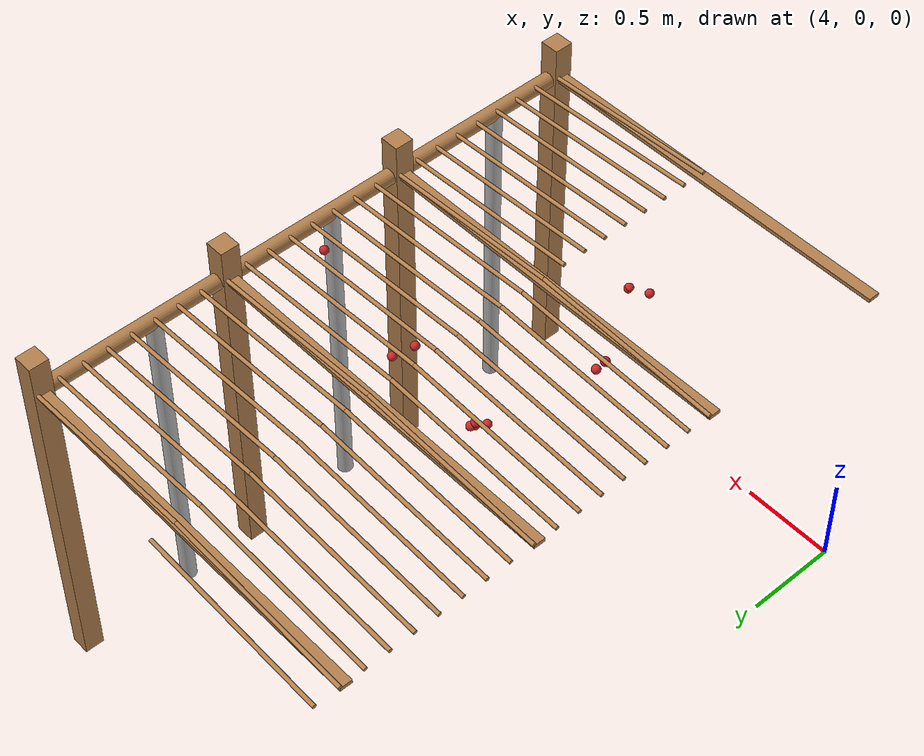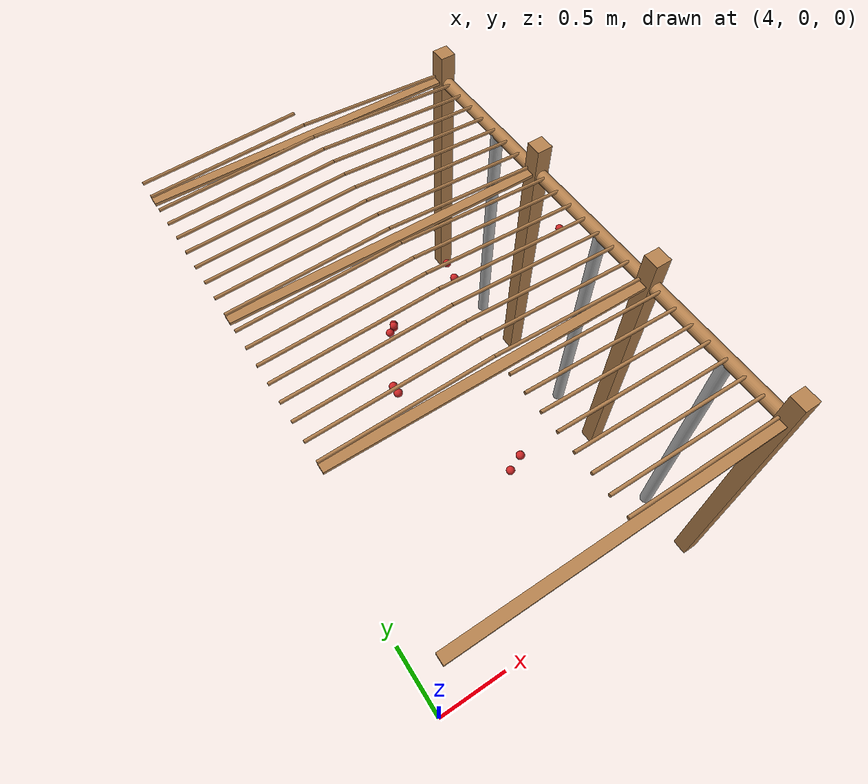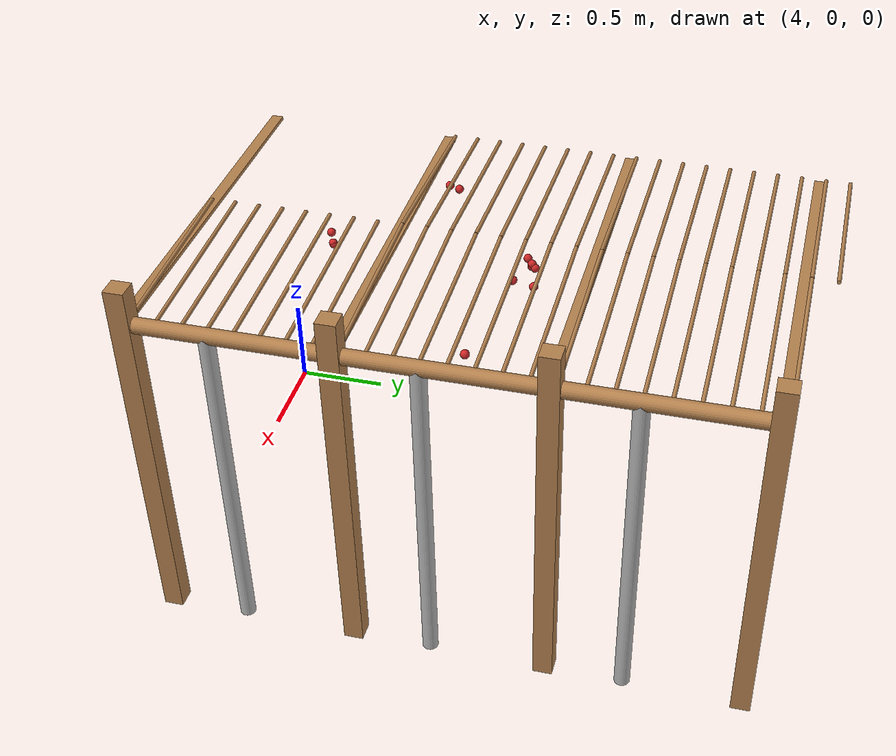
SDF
<sdf version="1.4">
 <model name="pergola">
  <include><name>post_21</name><pose>6.0 0.0 0 0 0 0</pose><uri>model://post</uri></include>
  <include><name>post_22</name><pose>6.0 1.0 0 0 0 0</pose><uri>model://post</uri></include>
  <include><name>post_23</name><pose>6.0 2.0 0 0 0 0</pose><uri>model://post</uri></include>
  <include><name>post_24</name><pose>6.0 3.0 0 0 0 0</pose><uri>model://post</uri></include>
  <link name="beam_14">
   <pose>5.0 0.0 1.81 0 0 0</pose>
   <collision name="collision"><geometry><box><size>2.0 0.06 0.02</size></box></geometry></collision>
   <visual name="visual">
    <geometry><box><size>2.0 0.06 0.02</size></box></geometry>
    <material><script><name>Gazebo/Wood</name></script></material>
   </visual>
   <inertial>
    <mass>5</mass>
    <inertia>
     <ixx>0.0016666666666666668</ixx>
     <ixy>0.0</ixy>
     <ixz>0.0</ixz>
     <iyy>1.6681666666666664</iyy>
     <iyz>0.0</iyz>
     <izz>1.6668333333333332</izz>
    </inertia>
   </inertial>
  </link>
  <link name="beam_15">
   <pose>5.0 1.0 1.81 0 0 0</pose>
   <collision name="collision"><geometry><box><size>2.0 0.06 0.02</size></box></geometry></collision>
   <visual name="visual">
    <geometry><box><size>2.0 0.06 0.02</size></box></geometry>
    <material><script><name>Gazebo/Wood</name></script></material>
   </visual>
   <inertial>
    <mass>5</mass>
    <inertia>
     <ixx>0.0016666666666666668</ixx>
     <ixy>0.0</ixy>
     <ixz>0.0</ixz>
     <iyy>1.6681666666666664</iyy>
     <iyz>0.0</iyz>
     <izz>1.6668333333333332</izz>
    </inertia>
   </inertial>
  </link>
  <link name="beam_16">
   <pose>5.0 2.0 1.81 0 0 0</pose>
   <collision name="collision"><geometry><box><size>2.0 0.06 0.02</size></box></geometry></collision>
   <visual name="visual">
    <geometry><box><size>2.0 0.06 0.02</size></box></geometry>
    <material><script><name>Gazebo/Wood</name></script></material>
   </visual>
   <inertial>
    <mass>5</mass>
    <inertia>
     <ixx>0.0016666666666666668</ixx>
     <ixy>0.0</ixy>
     <ixz>0.0</ixz>
     <iyy>1.6681666666666664</iyy>
     <iyz>0.0</iyz>
     <izz>1.6668333333333332</izz>
    </inertia>
   </inertial>
  </link>
  <link name="beam_17">
   <pose>5.0 3.0 1.81 0 0 0</pose>
   <collision name="collision"><geometry><box><size>2.0 0.06 0.02</size></box></geometry></collision>
   <visual name="visual">
    <geometry><box><size>2.0 0.06 0.02</size></box></geometry>
    <material><script><name>Gazebo/Wood</name></script></material>
   </visual>
   <inertial>
    <mass>5</mass>
    <inertia>
     <ixx>0.0016666666666666668</ixx>
     <ixy>0.0</ixy>
     <ixz>0.0</ixz>
     <iyy>1.6681666666666664</iyy>
     <iyz>0.0</iyz>
     <izz>1.6668333333333332</izz>
    </inertia>
   </inertial>
  </link>
  <include><name>tree_18</name><pose>6.0 0.4 0 0 0 0</pose><uri>model://tree_trunk</uri></include>
  <include><name>tree_19</name><pose>6.0 1.4 0 0 0 0</pose><uri>model://tree_trunk</uri></include>
  <include><name>tree_20</name><pose>6.0 2.4 0 0 0 0</pose><uri>model://tree_trunk</uri></include>
  <link name="baseBranch_18">
   <pose>6.0 0.5 1.8 1.5707963267948966 0 0</pose>
   <collision name="collision">
    <geometry><cylinder><radius>0.04</radius><length>0.94</length></cylinder></geometry>
   </collision>
   <visual name="visual">
    <geometry><cylinder><radius>0.04</radius><length>0.94</length></cylinder></geometry>
    <material><script><name>Gazebo/WoodFloor</name></script></material>
   </visual>
   <inertial>
    <mass>10</mass>
    <inertia>
     <ixx>0.7403333333333334</ixx>
     <ixy>0.0</ixy>
     <ixz>0.0</ixz>
     <iyy>0.7403333333333334</iyy>
     <iyz>0.0</iyz>
     <izz>0.008</izz>
    </inertia>
   </inertial>
  </link>
  <link name="baseBranch_19">
   <pose>6.0 1.5 1.8 1.5707963267948966 0 0</pose>
   <collision name="collision">
    <geometry><cylinder><radius>0.04</radius><length>0.94</length></cylinder></geometry>
   </collision>
   <visual name="visual">
    <geometry><cylinder><radius>0.04</radius><length>0.94</length></cylinder></geometry>
    <material><script><name>Gazebo/WoodFloor</name></script></material>
   </visual>
   <inertial>
    <mass>10</mass>
    <inertia>
     <ixx>0.7403333333333334</ixx>
     <ixy>0.0</ixy>
     <ixz>0.0</ixz>
     <iyy>0.7403333333333334</iyy>
     <iyz>0.0</iyz>
     <izz>0.008</izz>
    </inertia>
   </inertial>
  </link>
  <link name="baseBranch_20">
   <pose>6.0 2.5 1.8 1.5707963267948966 0 0</pose>
   <collision name="collision">
    <geometry><cylinder><radius>0.04</radius><length>0.94</length></cylinder></geometry>
   </collision>
   <visual name="visual">
    <geometry><cylinder><radius>0.04</radius><length>0.94</length></cylinder></geometry>
    <material><script><name>Gazebo/WoodFloor</name></script></material>
   </visual>
   <inertial>
    <mass>10</mass>
    <inertia>
     <ixx>0.7403333333333334</ixx>
     <ixy>0.0</ixy>
     <ixz>0.0</ixz>
     <iyy>0.7403333333333334</iyy>
     <iyz>0.0</iyz>
     <izz>0.008</izz>
    </inertia>
   </inertial>
  </link>
  <link name="vine_193">
   <pose>5.5 0.03 1.85 0 -1.5208379310729538 0</pose>
   <collision name="collision">
    <geometry><cylinder><radius>0.01</radius><length>1.0012492197250393</length></cylinder></geometry>
   </collision>
   <visual name="visual">
    <geometry><cylinder><radius>0.01</radius><length>1.0012492197250393</length></cylinder></geometry>
    <material><script><name>Gazebo/WoodFloor</name></script></material>
   </visual>
   <inertial>
    <mass>5</mass>
    <inertia>
     <ixx>0.41783333333333345</ixx>
     <ixy>0.0</ixy>
     <ixz>0.0</ixz>
     <iyy>0.41783333333333345</iyy>
     <iyz>0.0</iyz>
     <izz>0.00025</izz>
    </inertia>
   </inertial>
  </link>
  <link name="vine_195">
   <pose>5.5 0.155 1.85 0 -1.5208379310729538 0</pose>
   <collision name="collision">
    <geometry><cylinder><radius>0.01</radius><length>1.0012492197250393</length></cylinder></geometry>
   </collision>
   <visual name="visual">
    <geometry><cylinder><radius>0.01</radius><length>1.0012492197250393</length></cylinder></geometry>
    <material><script><name>Gazebo/WoodFloor</name></script></material>
   </visual>
   <inertial>
    <mass>5</mass>
    <inertia>
     <ixx>0.41783333333333345</ixx>
     <ixy>0.0</ixy>
     <ixz>0.0</ixz>
     <iyy>0.41783333333333345</iyy>
     <iyz>0.0</iyz>
     <izz>0.00025</izz>
    </inertia>
   </inertial>
  </link>
  <link name="vine_197">
   <pose>5.5 0.28 1.85 0 -1.5208379310729538 0</pose>
   <collision name="collision">
    <geometry><cylinder><radius>0.01</radius><length>1.0012492197250393</length></cylinder></geometry>
   </collision>
   <visual name="visual">
    <geometry><cylinder><radius>0.01</radius><length>1.0012492197250393</length></cylinder></geometry>
    <material><script><name>Gazebo/WoodFloor</name></script></material>
   </visual>
   <inertial>
    <mass>5</mass>
    <inertia>
     <ixx>0.41783333333333345</ixx>
     <ixy>0.0</ixy>
     <ixz>0.0</ixz>
     <iyy>0.41783333333333345</iyy>
     <iyz>0.0</iyz>
     <izz>0.00025</izz>
    </inertia>
   </inertial>
  </link>
  <link name="vine_199">
   <pose>5.5 0.405 1.85 0 -1.5208379310729538 0</pose>
   <collision name="collision">
    <geometry><cylinder><radius>0.01</radius><length>1.0012492197250393</length></cylinder></geometry>
   </collision>
   <visual name="visual">
    <geometry><cylinder><radius>0.01</radius><length>1.0012492197250393</length></cylinder></geometry>
    <material><script><name>Gazebo/WoodFloor</name></script></material>
   </visual>
   <inertial>
    <mass>5</mass>
    <inertia>
     <ixx>0.41783333333333345</ixx>
     <ixy>0.0</ixy>
     <ixz>0.0</ixz>
     <iyy>0.41783333333333345</iyy>
     <iyz>0.0</iyz>
     <izz>0.00025</izz>
    </inertia>
   </inertial>
  </link>
  <link name="vine_201">
   <pose>5.5 0.53 1.85 0 -1.5208379310729538 0</pose>
   <collision name="collision">
    <geometry><cylinder><radius>0.01</radius><length>1.0012492197250393</length></cylinder></geometry>
   </collision>
   <visual name="visual">
    <geometry><cylinder><radius>0.01</radius><length>1.0012492197250393</length></cylinder></geometry>
    <material><script><name>Gazebo/WoodFloor</name></script></material>
   </visual>
   <inertial>
    <mass>5</mass>
    <inertia>
     <ixx>0.41783333333333345</ixx>
     <ixy>0.0</ixy>
     <ixz>0.0</ixz>
     <iyy>0.41783333333333345</iyy>
     <iyz>0.0</iyz>
     <izz>0.00025</izz>
    </inertia>
   </inertial>
  </link>
  <link name="vine_203">
   <pose>5.5 0.655 1.85 0 -1.5208379310729538 0</pose>
   <collision name="collision">
    <geometry><cylinder><radius>0.01</radius><length>1.0012492197250393</length></cylinder></geometry>
   </collision>
   <visual name="visual">
    <geometry><cylinder><radius>0.01</radius><length>1.0012492197250393</length></cylinder></geometry>
    <material><script><name>Gazebo/WoodFloor</name></script></material>
   </visual>
   <inertial>
    <mass>5</mass>
    <inertia>
     <ixx>0.41783333333333345</ixx>
     <ixy>0.0</ixy>
     <ixz>0.0</ixz>
     <iyy>0.41783333333333345</iyy>
     <iyz>0.0</iyz>
     <izz>0.00025</izz>
    </inertia>
   </inertial>
  </link>
  <link name="vine_205">
   <pose>5.5 0.78 1.85 0 -1.5208379310729538 0</pose>
   <collision name="collision">
    <geometry><cylinder><radius>0.01</radius><length>1.0012492197250393</length></cylinder></geometry>
   </collision>
   <visual name="visual">
    <geometry><cylinder><radius>0.01</radius><length>1.0012492197250393</length></cylinder></geometry>
    <material><script><name>Gazebo/WoodFloor</name></script></material>
   </visual>
   <inertial>
    <mass>5</mass>
    <inertia>
     <ixx>0.41783333333333345</ixx>
     <ixy>0.0</ixy>
     <ixz>0.0</ixz>
     <iyy>0.41783333333333345</iyy>
     <iyz>0.0</iyz>
     <izz>0.00025</izz>
    </inertia>
   </inertial>
  </link>
  <link name="vine_207">
   <pose>5.5 0.905 1.85 0 -1.5208379310729538 0</pose>
   <collision name="collision">
    <geometry><cylinder><radius>0.01</radius><length>1.0012492197250393</length></cylinder></geometry>
   </collision>
   <visual name="visual">
    <geometry><cylinder><radius>0.01</radius><length>1.0012492197250393</length></cylinder></geometry>
    <material><script><name>Gazebo/WoodFloor</name></script></material>
   </visual>
   <inertial>
    <mass>5</mass>
    <inertia>
     <ixx>0.41783333333333345</ixx>
     <ixy>0.0</ixy>
     <ixz>0.0</ixz>
     <iyy>0.41783333333333345</iyy>
     <iyz>0.0</iyz>
     <izz>0.00025</izz>
    </inertia>
   </inertial>
  </link>
  <link name="vine_208">
   <pose>4.5 1.03 1.85 0 1.5208379310729538 0</pose>
   <collision name="collision">
    <geometry><cylinder><radius>0.01</radius><length>1.0012492197250393</length></cylinder></geometry>
   </collision>
   <visual name="visual">
    <geometry><cylinder><radius>0.01</radius><length>1.0012492197250393</length></cylinder></geometry>
    <material><script><name>Gazebo/WoodFloor</name></script></material>
   </visual>
   <inertial>
    <mass>5</mass>
    <inertia>
     <ixx>0.41783333333333345</ixx>
     <ixy>0.0</ixy>
     <ixz>0.0</ixz>
     <iyy>0.41783333333333345</iyy>
     <iyz>0.0</iyz>
     <izz>0.00025</izz>
    </inertia>
   </inertial>
  </link>
  <link name="vine_209">
   <pose>5.5 1.03 1.85 0 -1.5208379310729538 0</pose>
   <collision name="collision">
    <geometry><cylinder><radius>0.01</radius><length>1.0012492197250393</length></cylinder></geometry>
   </collision>
   <visual name="visual">
    <geometry><cylinder><radius>0.01</radius><length>1.0012492197250393</length></cylinder></geometry>
    <material><script><name>Gazebo/WoodFloor</name></script></material>
   </visual>
   <inertial>
    <mass>5</mass>
    <inertia>
     <ixx>0.41783333333333345</ixx>
     <ixy>0.0</ixy>
     <ixz>0.0</ixz>
     <iyy>0.41783333333333345</iyy>
     <iyz>0.0</iyz>
     <izz>0.00025</izz>
    </inertia>
   </inertial>
  </link>
  <link name="vine_210">
   <pose>4.5 1.155 1.85 0 1.5208379310729538 0</pose>
   <collision name="collision">
    <geometry><cylinder><radius>0.01</radius><length>1.0012492197250393</length></cylinder></geometry>
   </collision>
   <visual name="visual">
    <geometry><cylinder><radius>0.01</radius><length>1.0012492197250393</length></cylinder></geometry>
    <material><script><name>Gazebo/WoodFloor</name></script></material>
   </visual>
   <inertial>
    <mass>5</mass>
    <inertia>
     <ixx>0.41783333333333345</ixx>
     <ixy>0.0</ixy>
     <ixz>0.0</ixz>
     <iyy>0.41783333333333345</iyy>
     <iyz>0.0</iyz>
     <izz>0.00025</izz>
    </inertia>
   </inertial>
  </link>
  <link name="vine_211">
   <pose>5.5 1.155 1.85 0 -1.5208379310729538 0</pose>
   <collision name="collision">
    <geometry><cylinder><radius>0.01</radius><length>1.0012492197250393</length></cylinder></geometry>
   </collision>
   <visual name="visual">
    <geometry><cylinder><radius>0.01</radius><length>1.0012492197250393</length></cylinder></geometry>
    <material><script><name>Gazebo/WoodFloor</name></script></material>
   </visual>
   <inertial>
    <mass>5</mass>
    <inertia>
     <ixx>0.41783333333333345</ixx>
     <ixy>0.0</ixy>
     <ixz>0.0</ixz>
     <iyy>0.41783333333333345</iyy>
     <iyz>0.0</iyz>
     <izz>0.00025</izz>
    </inertia>
   </inertial>
  </link>
  <link name="vine_212">
   <pose>4.5 1.28 1.85 0 1.5208379310729538 0</pose>
   <collision name="collision">
    <geometry><cylinder><radius>0.01</radius><length>1.0012492197250393</length></cylinder></geometry>
   </collision>
   <visual name="visual">
    <geometry><cylinder><radius>0.01</radius><length>1.0012492197250393</length></cylinder></geometry>
    <material><script><name>Gazebo/WoodFloor</name></script></material>
   </visual>
   <inertial>
    <mass>5</mass>
    <inertia>
     <ixx>0.41783333333333345</ixx>
     <ixy>0.0</ixy>
     <ixz>0.0</ixz>
     <iyy>0.41783333333333345</iyy>
     <iyz>0.0</iyz>
     <izz>0.00025</izz>
    </inertia>
   </inertial>
  </link>
  <link name="vine_213">
   <pose>5.5 1.28 1.85 0 -1.5208379310729538 0</pose>
   <collision name="collision">
    <geometry><cylinder><radius>0.01</radius><length>1.0012492197250393</length></cylinder></geometry>
   </collision>
   <visual name="visual">
    <geometry><cylinder><radius>0.01</radius><length>1.0012492197250393</length></cylinder></geometry>
    <material><script><name>Gazebo/WoodFloor</name></script></material>
   </visual>
   <inertial>
    <mass>5</mass>
    <inertia>
     <ixx>0.41783333333333345</ixx>
     <ixy>0.0</ixy>
     <ixz>0.0</ixz>
     <iyy>0.41783333333333345</iyy>
     <iyz>0.0</iyz>
     <izz>0.00025</izz>
    </inertia>
   </inertial>
  </link>
  <link name="vine_214">
   <pose>4.5 1.405 1.85 0 1.5208379310729538 0</pose>
   <collision name="collision">
    <geometry><cylinder><radius>0.01</radius><length>1.0012492197250393</length></cylinder></geometry>
   </collision>
   <visual name="visual">
    <geometry><cylinder><radius>0.01</radius><length>1.0012492197250393</length></cylinder></geometry>
    <material><script><name>Gazebo/WoodFloor</name></script></material>
   </visual>
   <inertial>
    <mass>5</mass>
    <inertia>
     <ixx>0.41783333333333345</ixx>
     <ixy>0.0</ixy>
     <ixz>0.0</ixz>
     <iyy>0.41783333333333345</iyy>
     <iyz>0.0</iyz>
     <izz>0.00025</izz>
    </inertia>
   </inertial>
  </link>
  <link name="vine_215">
   <pose>5.5 1.405 1.85 0 -1.5208379310729538 0</pose>
   <collision name="collision">
    <geometry><cylinder><radius>0.01</radius><length>1.0012492197250393</length></cylinder></geometry>
   </collision>
   <visual name="visual">
    <geometry><cylinder><radius>0.01</radius><length>1.0012492197250393</length></cylinder></geometry>
    <material><script><name>Gazebo/WoodFloor</name></script></material>
   </visual>
   <inertial>
    <mass>5</mass>
    <inertia>
     <ixx>0.41783333333333345</ixx>
     <ixy>0.0</ixy>
     <ixz>0.0</ixz>
     <iyy>0.41783333333333345</iyy>
     <iyz>0.0</iyz>
     <izz>0.00025</izz>
    </inertia>
   </inertial>
  </link>
  <link name="vine_216">
   <pose>4.5 1.53 1.85 0 1.5208379310729538 0</pose>
   <collision name="collision">
    <geometry><cylinder><radius>0.01</radius><length>1.0012492197250393</length></cylinder></geometry>
   </collision>
   <visual name="visual">
    <geometry><cylinder><radius>0.01</radius><length>1.0012492197250393</length></cylinder></geometry>
    <material><script><name>Gazebo/WoodFloor</name></script></material>
   </visual>
   <inertial>
    <mass>5</mass>
    <inertia>
     <ixx>0.41783333333333345</ixx>
     <ixy>0.0</ixy>
     <ixz>0.0</ixz>
     <iyy>0.41783333333333345</iyy>
     <iyz>0.0</iyz>
     <izz>0.00025</izz>
    </inertia>
   </inertial>
  </link>
  <link name="vine_217">
   <pose>5.5 1.53 1.85 0 -1.5208379310729538 0</pose>
   <collision name="collision">
    <geometry><cylinder><radius>0.01</radius><length>1.0012492197250393</length></cylinder></geometry>
   </collision>
   <visual name="visual">
    <geometry><cylinder><radius>0.01</radius><length>1.0012492197250393</length></cylinder></geometry>
    <material><script><name>Gazebo/WoodFloor</name></script></material>
   </visual>
   <inertial>
    <mass>5</mass>
    <inertia>
     <ixx>0.41783333333333345</ixx>
     <ixy>0.0</ixy>
     <ixz>0.0</ixz>
     <iyy>0.41783333333333345</iyy>
     <iyz>0.0</iyz>
     <izz>0.00025</izz>
    </inertia>
   </inertial>
  </link>
  <link name="vine_218">
   <pose>4.5 1.655 1.85 0 1.5208379310729538 0</pose>
   <collision name="collision">
    <geometry><cylinder><radius>0.01</radius><length>1.0012492197250393</length></cylinder></geometry>
   </collision>
   <visual name="visual">
    <geometry><cylinder><radius>0.01</radius><length>1.0012492197250393</length></cylinder></geometry>
    <material><script><name>Gazebo/WoodFloor</name></script></material>
   </visual>
   <inertial>
    <mass>5</mass>
    <inertia>
     <ixx>0.41783333333333345</ixx>
     <ixy>0.0</ixy>
     <ixz>0.0</ixz>
     <iyy>0.41783333333333345</iyy>
     <iyz>0.0</iyz>
     <izz>0.00025</izz>
    </inertia>
   </inertial>
  </link>
  <link name="vine_219">
   <pose>5.5 1.655 1.85 0 -1.5208379310729538 0</pose>
   <collision name="collision">
    <geometry><cylinder><radius>0.01</radius><length>1.0012492197250393</length></cylinder></geometry>
   </collision>
   <visual name="visual">
    <geometry><cylinder><radius>0.01</radius><length>1.0012492197250393</length></cylinder></geometry>
    <material><script><name>Gazebo/WoodFloor</name></script></material>
   </visual>
   <inertial>
    <mass>5</mass>
    <inertia>
     <ixx>0.41783333333333345</ixx>
     <ixy>0.0</ixy>
     <ixz>0.0</ixz>
     <iyy>0.41783333333333345</iyy>
     <iyz>0.0</iyz>
     <izz>0.00025</izz>
    </inertia>
   </inertial>
  </link>
  <link name="vine_220">
   <pose>4.5 1.78 1.85 0 1.5208379310729538 0</pose>
   <collision name="collision">
    <geometry><cylinder><radius>0.01</radius><length>1.0012492197250393</length></cylinder></geometry>
   </collision>
   <visual name="visual">
    <geometry><cylinder><radius>0.01</radius><length>1.0012492197250393</length></cylinder></geometry>
    <material><script><name>Gazebo/WoodFloor</name></script></material>
   </visual>
   <inertial>
    <mass>5</mass>
    <inertia>
     <ixx>0.41783333333333345</ixx>
     <ixy>0.0</ixy>
     <ixz>0.0</ixz>
     <iyy>0.41783333333333345</iyy>
     <iyz>0.0</iyz>
     <izz>0.00025</izz>
    </inertia>
   </inertial>
  </link>
  <link name="vine_221">
   <pose>5.5 1.78 1.85 0 -1.5208379310729538 0</pose>
   <collision name="collision">
    <geometry><cylinder><radius>0.01</radius><length>1.0012492197250393</length></cylinder></geometry>
   </collision>
   <visual name="visual">
    <geometry><cylinder><radius>0.01</radius><length>1.0012492197250393</length></cylinder></geometry>
    <material><script><name>Gazebo/WoodFloor</name></script></material>
   </visual>
   <inertial>
    <mass>5</mass>
    <inertia>
     <ixx>0.41783333333333345</ixx>
     <ixy>0.0</ixy>
     <ixz>0.0</ixz>
     <iyy>0.41783333333333345</iyy>
     <iyz>0.0</iyz>
     <izz>0.00025</izz>
    </inertia>
   </inertial>
  </link>
  <link name="vine_222">
   <pose>4.5 1.905 1.85 0 1.5208379310729538 0</pose>
   <collision name="collision">
    <geometry><cylinder><radius>0.01</radius><length>1.0012492197250393</length></cylinder></geometry>
   </collision>
   <visual name="visual">
    <geometry><cylinder><radius>0.01</radius><length>1.0012492197250393</length></cylinder></geometry>
    <material><script><name>Gazebo/WoodFloor</name></script></material>
   </visual>
   <inertial>
    <mass>5</mass>
    <inertia>
     <ixx>0.41783333333333345</ixx>
     <ixy>0.0</ixy>
     <ixz>0.0</ixz>
     <iyy>0.41783333333333345</iyy>
     <iyz>0.0</iyz>
     <izz>0.00025</izz>
    </inertia>
   </inertial>
  </link>
  <link name="vine_223">
   <pose>5.5 1.905 1.85 0 -1.5208379310729538 0</pose>
   <collision name="collision">
    <geometry><cylinder><radius>0.01</radius><length>1.0012492197250393</length></cylinder></geometry>
   </collision>
   <visual name="visual">
    <geometry><cylinder><radius>0.01</radius><length>1.0012492197250393</length></cylinder></geometry>
    <material><script><name>Gazebo/WoodFloor</name></script></material>
   </visual>
   <inertial>
    <mass>5</mass>
    <inertia>
     <ixx>0.41783333333333345</ixx>
     <ixy>0.0</ixy>
     <ixz>0.0</ixz>
     <iyy>0.41783333333333345</iyy>
     <iyz>0.0</iyz>
     <izz>0.00025</izz>
    </inertia>
   </inertial>
  </link>
  <link name="vine_224">
   <pose>4.5 2.03 1.85 0 1.5208379310729538 0</pose>
   <collision name="collision">
    <geometry><cylinder><radius>0.01</radius><length>1.0012492197250393</length></cylinder></geometry>
   </collision>
   <visual name="visual">
    <geometry><cylinder><radius>0.01</radius><length>1.0012492197250393</length></cylinder></geometry>
    <material><script><name>Gazebo/WoodFloor</name></script></material>
   </visual>
   <inertial>
    <mass>5</mass>
    <inertia>
     <ixx>0.41783333333333345</ixx>
     <ixy>0.0</ixy>
     <ixz>0.0</ixz>
     <iyy>0.41783333333333345</iyy>
     <iyz>0.0</iyz>
     <izz>0.00025</izz>
    </inertia>
   </inertial>
  </link>
  <link name="vine_225">
   <pose>5.5 2.03 1.85 0 -1.5208379310729538 0</pose>
   <collision name="collision">
    <geometry><cylinder><radius>0.01</radius><length>1.0012492197250393</length></cylinder></geometry>
   </collision>
   <visual name="visual">
    <geometry><cylinder><radius>0.01</radius><length>1.0012492197250393</length></cylinder></geometry>
    <material><script><name>Gazebo/WoodFloor</name></script></material>
   </visual>
   <inertial>
    <mass>5</mass>
    <inertia>
     <ixx>0.41783333333333345</ixx>
     <ixy>0.0</ixy>
     <ixz>0.0</ixz>
     <iyy>0.41783333333333345</iyy>
     <iyz>0.0</iyz>
     <izz>0.00025</izz>
    </inertia>
   </inertial>
  </link>
  <link name="vine_226">
   <pose>4.5 2.155 1.85 0 1.5208379310729538 0</pose>
   <collision name="collision">
    <geometry><cylinder><radius>0.01</radius><length>1.0012492197250393</length></cylinder></geometry>
   </collision>
   <visual name="visual">
    <geometry><cylinder><radius>0.01</radius><length>1.0012492197250393</length></cylinder></geometry>
    <material><script><name>Gazebo/WoodFloor</name></script></material>
   </visual>
   <inertial>
    <mass>5</mass>
    <inertia>
     <ixx>0.41783333333333345</ixx>
     <ixy>0.0</ixy>
     <ixz>0.0</ixz>
     <iyy>0.41783333333333345</iyy>
     <iyz>0.0</iyz>
     <izz>0.00025</izz>
    </inertia>
   </inertial>
  </link>
  <link name="vine_227">
   <pose>5.5 2.155 1.85 0 -1.5208379310729538 0</pose>
   <collision name="collision">
    <geometry><cylinder><radius>0.01</radius><length>1.0012492197250393</length></cylinder></geometry>
   </collision>
   <visual name="visual">
    <geometry><cylinder><radius>0.01</radius><length>1.0012492197250393</length></cylinder></geometry>
    <material><script><name>Gazebo/WoodFloor</name></script></material>
   </visual>
   <inertial>
    <mass>5</mass>
    <inertia>
     <ixx>0.41783333333333345</ixx>
     <ixy>0.0</ixy>
     <ixz>0.0</ixz>
     <iyy>0.41783333333333345</iyy>
     <iyz>0.0</iyz>
     <izz>0.00025</izz>
    </inertia>
   </inertial>
  </link>
  <link name="vine_228">
   <pose>4.5 2.28 1.85 0 1.5208379310729538 0</pose>
   <collision name="collision">
    <geometry><cylinder><radius>0.01</radius><length>1.0012492197250393</length></cylinder></geometry>
   </collision>
   <visual name="visual">
    <geometry><cylinder><radius>0.01</radius><length>1.0012492197250393</length></cylinder></geometry>
    <material><script><name>Gazebo/WoodFloor</name></script></material>
   </visual>
   <inertial>
    <mass>5</mass>
    <inertia>
     <ixx>0.41783333333333345</ixx>
     <ixy>0.0</ixy>
     <ixz>0.0</ixz>
     <iyy>0.41783333333333345</iyy>
     <iyz>0.0</iyz>
     <izz>0.00025</izz>
    </inertia>
   </inertial>
  </link>
  <link name="vine_229">
   <pose>5.5 2.28 1.85 0 -1.5208379310729538 0</pose>
   <collision name="collision">
    <geometry><cylinder><radius>0.01</radius><length>1.0012492197250393</length></cylinder></geometry>
   </collision>
   <visual name="visual">
    <geometry><cylinder><radius>0.01</radius><length>1.0012492197250393</length></cylinder></geometry>
    <material><script><name>Gazebo/WoodFloor</name></script></material>
   </visual>
   <inertial>
    <mass>5</mass>
    <inertia>
     <ixx>0.41783333333333345</ixx>
     <ixy>0.0</ixy>
     <ixz>0.0</ixz>
     <iyy>0.41783333333333345</iyy>
     <iyz>0.0</iyz>
     <izz>0.00025</izz>
    </inertia>
   </inertial>
  </link>
  <link name="vine_230">
   <pose>4.5 2.405 1.85 0 1.5208379310729538 0</pose>
   <collision name="collision">
    <geometry><cylinder><radius>0.01</radius><length>1.0012492197250393</length></cylinder></geometry>
   </collision>
   <visual name="visual">
    <geometry><cylinder><radius>0.01</radius><length>1.0012492197250393</length></cylinder></geometry>
    <material><script><name>Gazebo/WoodFloor</name></script></material>
   </visual>
   <inertial>
    <mass>5</mass>
    <inertia>
     <ixx>0.41783333333333345</ixx>
     <ixy>0.0</ixy>
     <ixz>0.0</ixz>
     <iyy>0.41783333333333345</iyy>
     <iyz>0.0</iyz>
     <izz>0.00025</izz>
    </inertia>
   </inertial>
  </link>
  <link name="vine_231">
   <pose>5.5 2.405 1.85 0 -1.5208379310729538 0</pose>
   <collision name="collision">
    <geometry><cylinder><radius>0.01</radius><length>1.0012492197250393</length></cylinder></geometry>
   </collision>
   <visual name="visual">
    <geometry><cylinder><radius>0.01</radius><length>1.0012492197250393</length></cylinder></geometry>
    <material><script><name>Gazebo/WoodFloor</name></script></material>
   </visual>
   <inertial>
    <mass>5</mass>
    <inertia>
     <ixx>0.41783333333333345</ixx>
     <ixy>0.0</ixy>
     <ixz>0.0</ixz>
     <iyy>0.41783333333333345</iyy>
     <iyz>0.0</iyz>
     <izz>0.00025</izz>
    </inertia>
   </inertial>
  </link>
  <link name="vine_232">
   <pose>4.5 2.53 1.85 0 1.5208379310729538 0</pose>
   <collision name="collision">
    <geometry><cylinder><radius>0.01</radius><length>1.0012492197250393</length></cylinder></geometry>
   </collision>
   <visual name="visual">
    <geometry><cylinder><radius>0.01</radius><length>1.0012492197250393</length></cylinder></geometry>
    <material><script><name>Gazebo/WoodFloor</name></script></material>
   </visual>
   <inertial>
    <mass>5</mass>
    <inertia>
     <ixx>0.41783333333333345</ixx>
     <ixy>0.0</ixy>
     <ixz>0.0</ixz>
     <iyy>0.41783333333333345</iyy>
     <iyz>0.0</iyz>
     <izz>0.00025</izz>
    </inertia>
   </inertial>
  </link>
  <link name="vine_233">
   <pose>5.5 2.53 1.85 0 -1.5208379310729538 0</pose>
   <collision name="collision">
    <geometry><cylinder><radius>0.01</radius><length>1.0012492197250393</length></cylinder></geometry>
   </collision>
   <visual name="visual">
    <geometry><cylinder><radius>0.01</radius><length>1.0012492197250393</length></cylinder></geometry>
    <material><script><name>Gazebo/WoodFloor</name></script></material>
   </visual>
   <inertial>
    <mass>5</mass>
    <inertia>
     <ixx>0.41783333333333345</ixx>
     <ixy>0.0</ixy>
     <ixz>0.0</ixz>
     <iyy>0.41783333333333345</iyy>
     <iyz>0.0</iyz>
     <izz>0.00025</izz>
    </inertia>
   </inertial>
  </link>
  <link name="vine_234">
   <pose>4.5 2.655 1.85 0 1.5208379310729538 0</pose>
   <collision name="collision">
    <geometry><cylinder><radius>0.01</radius><length>1.0012492197250393</length></cylinder></geometry>
   </collision>
   <visual name="visual">
    <geometry><cylinder><radius>0.01</radius><length>1.0012492197250393</length></cylinder></geometry>
    <material><script><name>Gazebo/WoodFloor</name></script></material>
   </visual>
   <inertial>
    <mass>5</mass>
    <inertia>
     <ixx>0.41783333333333345</ixx>
     <ixy>0.0</ixy>
     <ixz>0.0</ixz>
     <iyy>0.41783333333333345</iyy>
     <iyz>0.0</iyz>
     <izz>0.00025</izz>
    </inertia>
   </inertial>
  </link>
  <link name="vine_235">
   <pose>5.5 2.655 1.85 0 -1.5208379310729538 0</pose>
   <collision name="collision">
    <geometry><cylinder><radius>0.01</radius><length>1.0012492197250393</length></cylinder></geometry>
   </collision>
   <visual name="visual">
    <geometry><cylinder><radius>0.01</radius><length>1.0012492197250393</length></cylinder></geometry>
    <material><script><name>Gazebo/WoodFloor</name></script></material>
   </visual>
   <inertial>
    <mass>5</mass>
    <inertia>
     <ixx>0.41783333333333345</ixx>
     <ixy>0.0</ixy>
     <ixz>0.0</ixz>
     <iyy>0.41783333333333345</iyy>
     <iyz>0.0</iyz>
     <izz>0.00025</izz>
    </inertia>
   </inertial>
  </link>
  <link name="vine_236">
   <pose>4.5 2.78 1.85 0 1.5208379310729538 0</pose>
   <collision name="collision">
    <geometry><cylinder><radius>0.01</radius><length>1.0012492197250393</length></cylinder></geometry>
   </collision>
   <visual name="visual">
    <geometry><cylinder><radius>0.01</radius><length>1.0012492197250393</length></cylinder></geometry>
    <material><script><name>Gazebo/WoodFloor</name></script></material>
   </visual>
   <inertial>
    <mass>5</mass>
    <inertia>
     <ixx>0.41783333333333345</ixx>
     <ixy>0.0</ixy>
     <ixz>0.0</ixz>
     <iyy>0.41783333333333345</iyy>
     <iyz>0.0</iyz>
     <izz>0.00025</izz>
    </inertia>
   </inertial>
  </link>
  <link name="vine_237">
   <pose>5.5 2.78 1.85 0 -1.5208379310729538 0</pose>
   <collision name="collision">
    <geometry><cylinder><radius>0.01</radius><length>1.0012492197250393</length></cylinder></geometry>
   </collision>
   <visual name="visual">
    <geometry><cylinder><radius>0.01</radius><length>1.0012492197250393</length></cylinder></geometry>
    <material><script><name>Gazebo/WoodFloor</name></script></material>
   </visual>
   <inertial>
    <mass>5</mass>
    <inertia>
     <ixx>0.41783333333333345</ixx>
     <ixy>0.0</ixy>
     <ixz>0.0</ixz>
     <iyy>0.41783333333333345</iyy>
     <iyz>0.0</iyz>
     <izz>0.00025</izz>
    </inertia>
   </inertial>
  </link>
  <link name="vine_238">
   <pose>4.5 2.905 1.85 0 1.5208379310729538 0</pose>
   <collision name="collision">
    <geometry><cylinder><radius>0.01</radius><length>1.0012492197250393</length></cylinder></geometry>
   </collision>
   <visual name="visual">
    <geometry><cylinder><radius>0.01</radius><length>1.0012492197250393</length></cylinder></geometry>
    <material><script><name>Gazebo/WoodFloor</name></script></material>
   </visual>
   <inertial>
    <mass>5</mass>
    <inertia>
     <ixx>0.41783333333333345</ixx>
     <ixy>0.0</ixy>
     <ixz>0.0</ixz>
     <iyy>0.41783333333333345</iyy>
     <iyz>0.0</iyz>
     <izz>0.00025</izz>
    </inertia>
   </inertial>
  </link>
  <link name="vine_239">
   <pose>5.5 2.905 1.85 0 -1.5208379310729538 0</pose>
   <collision name="collision">
    <geometry><cylinder><radius>0.01</radius><length>1.0012492197250393</length></cylinder></geometry>
   </collision>
   <visual name="visual">
    <geometry><cylinder><radius>0.01</radius><length>1.0012492197250393</length></cylinder></geometry>
    <material><script><name>Gazebo/WoodFloor</name></script></material>
   </visual>
   <inertial>
    <mass>5</mass>
    <inertia>
     <ixx>0.41783333333333345</ixx>
     <ixy>0.0</ixy>
     <ixz>0.0</ixz>
     <iyy>0.41783333333333345</iyy>
     <iyz>0.0</iyz>
     <izz>0.00025</izz>
    </inertia>
   </inertial>
  </link>
  <link name="vine_240">
   <pose>4.5 3.03 1.85 0 1.5208379310729538 0</pose>
   <collision name="collision">
    <geometry><cylinder><radius>0.01</radius><length>1.0012492197250393</length></cylinder></geometry>
   </collision>
   <visual name="visual">
    <geometry><cylinder><radius>0.01</radius><length>1.0012492197250393</length></cylinder></geometry>
    <material><script><name>Gazebo/WoodFloor</name></script></material>
   </visual>
   <inertial>
    <mass>5</mass>
    <inertia>
     <ixx>0.41783333333333345</ixx>
     <ixy>0.0</ixy>
     <ixz>0.0</ixz>
     <iyy>0.41783333333333345</iyy>
     <iyz>0.0</iyz>
     <izz>0.00025</izz>
    </inertia>
   </inertial>
  </link>
  <link name="vine_241">
   <pose>5.5 3.03 1.85 0 -1.5208379310729538 0</pose>
   <collision name="collision">
    <geometry><cylinder><radius>0.01</radius><length>1.0012492197250393</length></cylinder></geometry>
   </collision>
   <visual name="visual">
    <geometry><cylinder><radius>0.01</radius><length>1.0012492197250393</length></cylinder></geometry>
    <material><script><name>Gazebo/WoodFloor</name></script></material>
   </visual>
   <inertial>
    <mass>5</mass>
    <inertia>
     <ixx>0.41783333333333345</ixx>
     <ixy>0.0</ixy>
     <ixz>0.0</ixz>
     <iyy>0.41783333333333345</iyy>
     <iyz>0.0</iyz>
     <izz>0.00025</izz>
    </inertia>
   </inertial>
  </link>
  <link name="vine_242">
   <pose>4.5 3.155 1.85 0 1.5208379310729538 0</pose>
   <collision name="collision">
    <geometry><cylinder><radius>0.01</radius><length>1.0012492197250393</length></cylinder></geometry>
   </collision>
   <visual name="visual">
    <geometry><cylinder><radius>0.01</radius><length>1.0012492197250393</length></cylinder></geometry>
    <material><script><name>Gazebo/WoodFloor</name></script></material>
   </visual>
   <inertial>
    <mass>5</mass>
    <inertia>
     <ixx>0.41783333333333345</ixx>
     <ixy>0.0</ixy>
     <ixz>0.0</ixz>
     <iyy>0.41783333333333345</iyy>
     <iyz>0.0</iyz>
     <izz>0.00025</izz>
    </inertia>
   </inertial>
  </link>
  <link name="fruit_2">
   <pose>4.730660712876815 1.606914687780624 1.5919087958120008 0 0 0</pose>
   <collision name="fruit_collision_2"><geometry><sphere><radius>0.022</radius></sphere></geometry></collision>
   <visual name="visual">
    <geometry><sphere><radius>0.022</radius></sphere></geometry>
    <material><script><name>Gazebo/Red</name></script></material>
   </visual>
   <inertial>
    <mass>0.05</mass>
    <inertia>
     <ixx>9.679999999999999e-06</ixx>
     <ixy>0.0</ixy>
     <ixz>0.0</ixz>
     <iyy>9.679999999999999e-06</iyy>
     <iyz>0.0</iyz>
     <izz>9.679999999999999e-06</izz>
    </inertia>
   </inertial>
   <sensor name="fruit_contact_2" type="contact">
    <contact><collision>fruit_collision_2</collision></contact>
   </sensor>
  </link>
  <link name="fruit_11">
   <pose>4.7877605751111005 0.5717634579832066 1.627735453471237 0 0 0</pose>
   <collision name="fruit_collision_11"><geometry><sphere><radius>0.022</radius></sphere></geometry></collision>
   <visual name="visual">
    <geometry><sphere><radius>0.022</radius></sphere></geometry>
    <material><script><name>Gazebo/Red</name></script></material>
   </visual>
   <inertial>
    <mass>0.05</mass>
    <inertia>
     <ixx>9.679999999999999e-06</ixx>
     <ixy>0.0</ixy>
     <ixz>0.0</ixz>
     <iyy>9.679999999999999e-06</iyy>
     <iyz>0.0</iyz>
     <izz>9.679999999999999e-06</izz>
    </inertia>
   </inertial>
   <sensor name="fruit_contact_11" type="contact">
    <contact><collision>fruit_collision_11</collision></contact>
   </sensor>
  </link>
  <link name="fruit_13">
   <pose>5.165839943602558 1.630203887412279 1.749812666873393 0 0 0</pose>
   <collision name="fruit_collision_13"><geometry><sphere><radius>0.022</radius></sphere></geometry></collision>
   <visual name="visual">
    <geometry><sphere><radius>0.022</radius></sphere></geometry>
    <material><script><name>Gazebo/Red</name></script></material>
   </visual>
   <inertial>
    <mass>0.05</mass>
    <inertia>
     <ixx>9.679999999999999e-06</ixx>
     <ixy>0.0</ixy>
     <ixz>0.0</ixz>
     <iyy>9.679999999999999e-06</iyy>
     <iyz>0.0</iyz>
     <izz>9.679999999999999e-06</izz>
    </inertia>
   </inertial>
   <sensor name="fruit_contact_13" type="contact">
    <contact><collision>fruit_collision_13</collision></contact>
   </sensor>
  </link>
  <link name="fruit_20">
   <pose>5.841731124917136 1.5726154408234359 1.7898752255794637 0 0 0</pose>
   <collision name="fruit_collision_20"><geometry><sphere><radius>0.022</radius></sphere></geometry></collision>
   <visual name="visual">
    <geometry><sphere><radius>0.022</radius></sphere></geometry>
    <material><script><name>Gazebo/Red</name></script></material>
   </visual>
   <inertial>
    <mass>0.05</mass>
    <inertia>
     <ixx>9.679999999999999e-06</ixx>
     <ixy>0.0</ixy>
     <ixz>0.0</ixz>
     <iyy>9.679999999999999e-06</iyy>
     <iyz>0.0</iyz>
     <izz>9.679999999999999e-06</izz>
    </inertia>
   </inertial>
   <sensor name="fruit_contact_20" type="contact">
    <contact><collision>fruit_collision_20</collision></contact>
   </sensor>
  </link>
  <link name="fruit_41">
   <pose>4.507654647863121 1.1383544209395695 1.8258702244048468 0 0 0</pose>
   <collision name="fruit_collision_41"><geometry><sphere><radius>0.022</radius></sphere></geometry></collision>
   <visual name="visual">
    <geometry><sphere><radius>0.022</radius></sphere></geometry>
    <material><script><name>Gazebo/Red</name></script></material>
   </visual>
   <inertial>
    <mass>0.05</mass>
    <inertia>
     <ixx>9.679999999999999e-06</ixx>
     <ixy>0.0</ixy>
     <ixz>0.0</ixz>
     <iyy>9.679999999999999e-06</iyy>
     <iyz>0.0</iyz>
     <izz>9.679999999999999e-06</izz>
    </inertia>
   </inertial>
   <sensor name="fruit_contact_41" type="contact">
    <contact><collision>fruit_collision_41</collision></contact>
   </sensor>
  </link>
  <link name="fruit_43">
   <pose>5.1907726275199755 1.7396030722266458 1.745179992313441 0 0 0</pose>
   <collision name="fruit_collision_43"><geometry><sphere><radius>0.022</radius></sphere></geometry></collision>
   <visual name="visual">
    <geometry><sphere><radius>0.022</radius></sphere></geometry>
    <material><script><name>Gazebo/Red</name></script></material>
   </visual>
   <inertial>
    <mass>0.05</mass>
    <inertia>
     <ixx>9.679999999999999e-06</ixx>
     <ixy>0.0</ixy>
     <ixz>0.0</ixz>
     <iyy>9.679999999999999e-06</iyy>
     <iyz>0.0</iyz>
     <izz>9.679999999999999e-06</izz>
    </inertia>
   </inertial>
   <sensor name="fruit_contact_43" type="contact">
    <contact><collision>fruit_collision_43</collision></contact>
   </sensor>
  </link>
  <link name="fruit_50">
   <pose>4.773033530555717 1.6383694527040675 1.5898498102654954 0 0 0</pose>
   <collision name="fruit_collision_50"><geometry><sphere><radius>0.022</radius></sphere></geometry></collision>
   <visual name="visual">
    <geometry><sphere><radius>0.022</radius></sphere></geometry>
    <material><script><name>Gazebo/Red</name></script></material>
   </visual>
   <inertial>
    <mass>0.05</mass>
    <inertia>
     <ixx>9.679999999999999e-06</ixx>
     <ixy>0.0</ixy>
     <ixz>0.0</ixz>
     <iyy>9.679999999999999e-06</iyy>
     <iyz>0.0</iyz>
     <izz>9.679999999999999e-06</izz>
    </inertia>
   </inertial>
   <sensor name="fruit_contact_50" type="contact">
    <contact><collision>fruit_collision_50</collision></contact>
   </sensor>
  </link>
  <link name="fruit_64">
   <pose>4.878513659059179 0.6143468022488876 1.6197668816698731 0 0 0</pose>
   <collision name="fruit_collision_64"><geometry><sphere><radius>0.022</radius></sphere></geometry></collision>
   <visual name="visual">
    <geometry><sphere><radius>0.022</radius></sphere></geometry>
    <material><script><name>Gazebo/Red</name></script></material>
   </visual>
   <inertial>
    <mass>0.05</mass>
    <inertia>
     <ixx>9.679999999999999e-06</ixx>
     <ixy>0.0</ixy>
     <ixz>0.0</ixz>
     <iyy>9.679999999999999e-06</iyy>
     <iyz>0.0</iyz>
     <izz>9.679999999999999e-06</izz>
    </inertia>
   </inertial>
   <sensor name="fruit_contact_64" type="contact">
    <contact><collision>fruit_collision_64</collision></contact>
   </sensor>
  </link>
  <link name="fruit_70">
   <pose>4.876553444691993 0.6116718373966735 1.6244195190803727 0 0 0</pose>
   <collision name="fruit_collision_70"><geometry><sphere><radius>0.022</radius></sphere></geometry></collision>
   <visual name="visual">
    <geometry><sphere><radius>0.022</radius></sphere></geometry>
    <material><script><name>Gazebo/Red</name></script></material>
   </visual>
   <inertial>
    <mass>0.05</mass>
    <inertia>
     <ixx>9.679999999999999e-06</ixx>
     <ixy>0.0</ixy>
     <ixz>0.0</ixz>
     <iyy>9.679999999999999e-06</iyy>
     <iyz>0.0</iyz>
     <izz>9.679999999999999e-06</izz>
    </inertia>
   </inertial>
   <sensor name="fruit_contact_70" type="contact">
    <contact><collision>fruit_collision_70</collision></contact>
   </sensor>
  </link>
  <link name="fruit_75">
   <pose>4.509959310532192 1.189354198063505 1.8125775246571172 0 0 0</pose>
   <collision name="fruit_collision_75"><geometry><sphere><radius>0.022</radius></sphere></geometry></collision>
   <visual name="visual">
    <geometry><sphere><radius>0.022</radius></sphere></geometry>
    <material><script><name>Gazebo/Red</name></script></material>
   </visual>
   <inertial>
    <mass>0.05</mass>
    <inertia>
     <ixx>9.679999999999999e-06</ixx>
     <ixy>0.0</ixy>
     <ixz>0.0</ixz>
     <iyy>9.679999999999999e-06</iyy>
     <iyz>0.0</iyz>
     <izz>9.679999999999999e-06</izz>
    </inertia>
   </inertial>
   <sensor name="fruit_contact_75" type="contact">
    <contact><collision>fruit_collision_75</collision></contact>
   </sensor>
  </link>
  <link name="fruit_88">
   <pose>4.782595163297524 1.6562766799987425 1.5732103014539869 0 0 0</pose>
   <collision name="fruit_collision_88"><geometry><sphere><radius>0.022</radius></sphere></geometry></collision>
   <visual name="visual">
    <geometry><sphere><radius>0.022</radius></sphere></geometry>
    <material><script><name>Gazebo/Red</name></script></material>
   </visual>
   <inertial>
    <mass>0.05</mass>
    <inertia>
     <ixx>9.679999999999999e-06</ixx>
     <ixy>0.0</ixy>
     <ixz>0.0</ixz>
     <iyy>9.679999999999999e-06</iyy>
     <iyz>0.0</iyz>
     <izz>9.679999999999999e-06</izz>
    </inertia>
   </inertial>
   <sensor name="fruit_contact_88" type="contact">
    <contact><collision>fruit_collision_88</collision></contact>
   </sensor>
  </link>
  <link name="fruit_92">
   <pose>4.77239292895869 1.6374242620306347 1.5743949848716055 0 0 0</pose>
   <collision name="fruit_collision_92"><geometry><sphere><radius>0.022</radius></sphere></geometry></collision>
   <visual name="visual">
    <geometry><sphere><radius>0.022</radius></sphere></geometry>
    <material><script><name>Gazebo/Red</name></script></material>
   </visual>
   <inertial>
    <mass>0.05</mass>
    <inertia>
     <ixx>9.679999999999999e-06</ixx>
     <ixy>0.0</ixy>
     <ixz>0.0</ixz>
     <iyy>9.679999999999999e-06</iyy>
     <iyz>0.0</iyz>
     <izz>9.679999999999999e-06</izz>
    </inertia>
   </inertial>
   <sensor name="fruit_contact_92" type="contact">
    <contact><collision>fruit_collision_92</collision></contact>
   </sensor>
  </link>
 </model>
</sdf>
